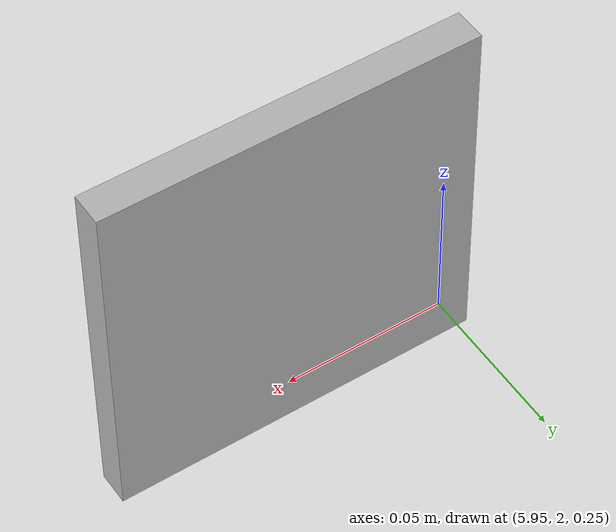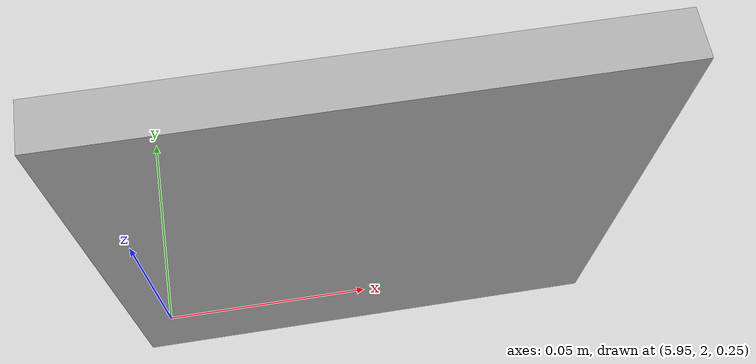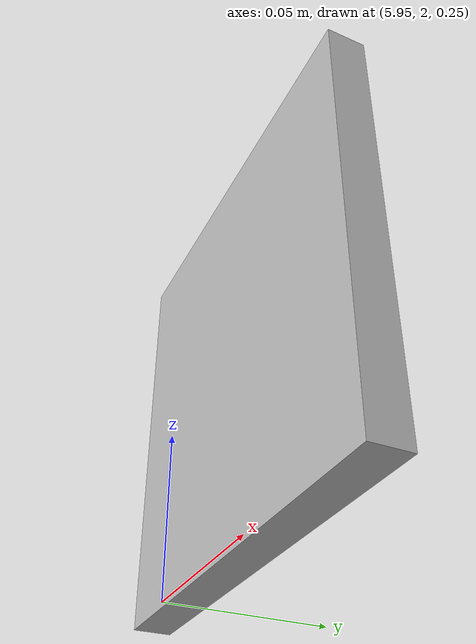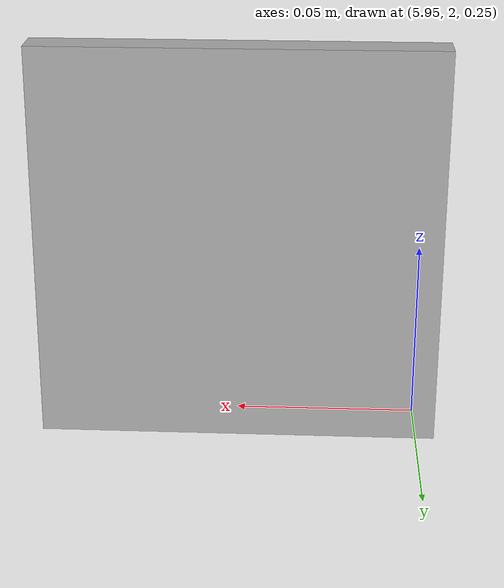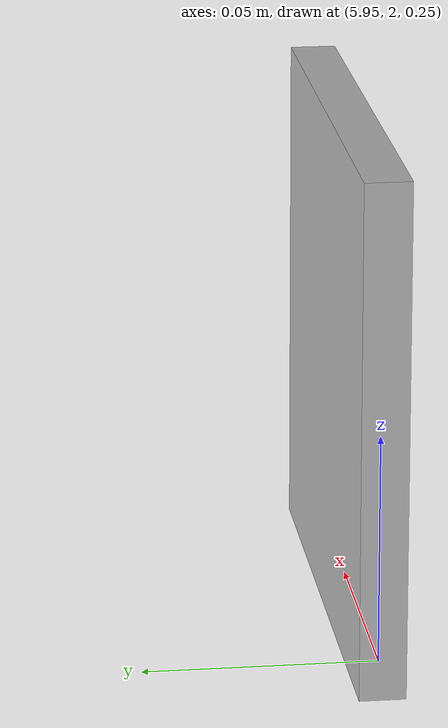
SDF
<?xml version='1.0'?>
<sdf version='1.6'>
  <model name='Apriltag36_11_00001'>
    <link name='main'>
    <pose frame=''>6 2 0.3 1.570796327 0 0</pose>
      <visual name='main_Visual'>
        <geometry>
          <box>
          <size>0.1125 0.1125 0.01</size>
          </box>
        </geometry>
           <material>
          <script>
            <uri>model://Apriltag36_11_00001/materials/scripts</uri>
            <uri>model://Apriltag36_11_00001/materials/textures</uri>
            <name>Apriltag36_11_00001</name>
          </script>
        </material>
      </visual>
     </link>
    <static>1</static>
  </model>
</sdf>
